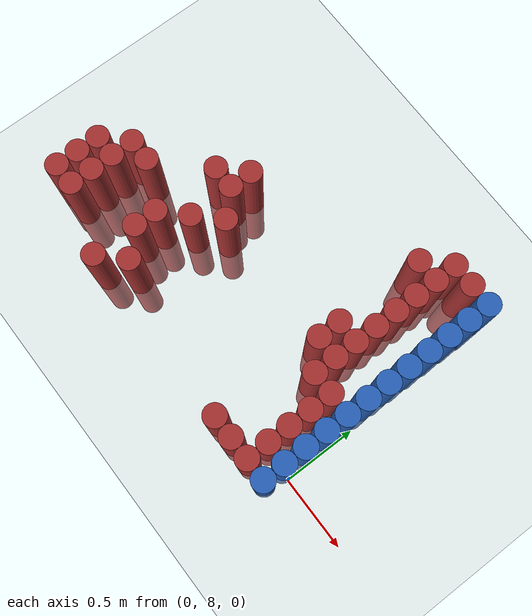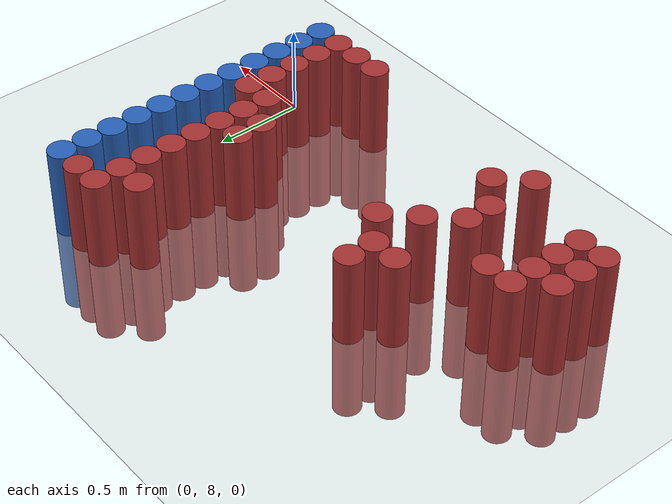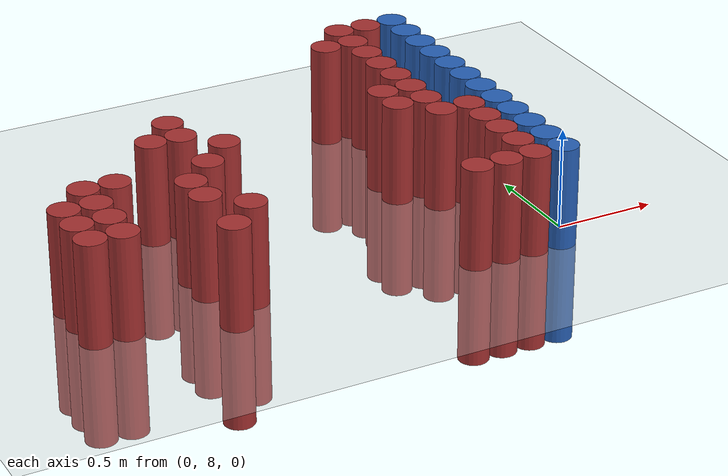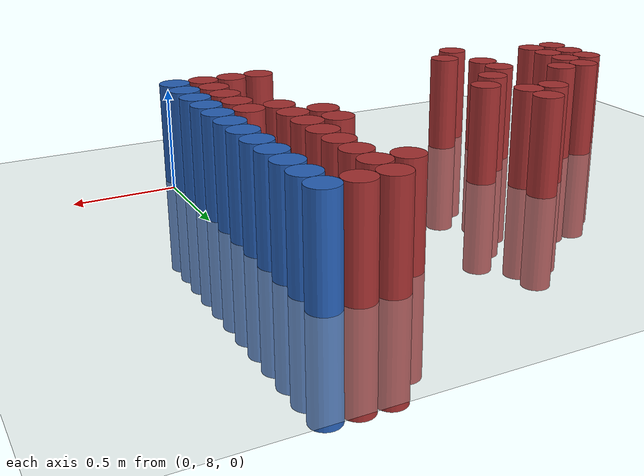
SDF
<sdf version="1.6">
 <world name="default">
  <model name="ground_plane">
   <static>1</static>
   <link name="link">
    <collision name="collision">
     <geometry><plane><normal>0 0 1</normal><size>100 100</size></plane></geometry>
     <surface><friction><ode><mu>100</mu><mu2>50</mu2></ode></friction></surface>
    </collision>
    <visual name="visual">
     <cast_shadows>0</cast_shadows>
     <geometry><plane><normal>0 0 1</normal><size>100 100</size></plane></geometry>
     <material>
      <script><uri>file://media/materials/scripts/gazebo.material</uri><name>Gazebo/Grey</name></script>
     </material>
    </visual>
   </link>
  </model>
  <model name="unit_cylinder_216">
   <static>1</static>
   <pose>-2.325000 8.025000 0.000000 0.000000 0.000000 0.000000</pose>
   <link name="link">
    <inertial>
     <mass>1</mass>
     <inertia><ixx>0.145833</ixx><ixy>0</ixy><ixz>0</ixz><iyy>0.145833</iyy><iyz>0</iyz><izz>0.125</izz></inertia>
    </inertial>
    <collision name="collision">
     <geometry><cylinder><radius>0.075000</radius><length>1</length></cylinder></geometry>
    </collision>
    <visual name="visual">
     <geometry><cylinder><radius>0.075000</radius><length>1</length></cylinder></geometry>
     <material>
      <ambient>0.648000 0.192000 0.192000 1</ambient>
      <diffuse>0.648000 0.192000 0.192000 1</diffuse>
     </material>
     <material>
      <script><name>Gazebo/Grey</name><uri>file://media/materials/scripts/gazebo.material</uri></script>
     </material>
    </visual>
   </link>
  </model>
  <model name="unit_cylinder_217">
   <static>1</static>
   <pose>-2.325000 8.175000 0.000000 0.000000 0.000000 0.000000</pose>
   <link name="link">
    <inertial>
     <mass>1</mass>
     <inertia><ixx>0.145833</ixx><ixy>0</ixy><ixz>0</ixz><iyy>0.145833</iyy><iyz>0</iyz><izz>0.125</izz></inertia>
    </inertial>
    <collision name="collision">
     <geometry><cylinder><radius>0.075000</radius><length>1</length></cylinder></geometry>
    </collision>
    <visual name="visual">
     <geometry><cylinder><radius>0.075000</radius><length>1</length></cylinder></geometry>
     <material>
      <ambient>0.648000 0.192000 0.192000 1</ambient>
      <diffuse>0.648000 0.192000 0.192000 1</diffuse>
     </material>
     <material>
      <script><name>Gazebo/Grey</name><uri>file://media/materials/scripts/gazebo.material</uri></script>
     </material>
    </visual>
   </link>
  </model>
  <model name="unit_cylinder_218">
   <static>1</static>
   <pose>-2.325000 8.325000 0.000000 0.000000 0.000000 0.000000</pose>
   <link name="link">
    <inertial>
     <mass>1</mass>
     <inertia><ixx>0.145833</ixx><ixy>0</ixy><ixz>0</ixz><iyy>0.145833</iyy><iyz>0</iyz><izz>0.125</izz></inertia>
    </inertial>
    <collision name="collision">
     <geometry><cylinder><radius>0.075000</radius><length>1</length></cylinder></geometry>
    </collision>
    <visual name="visual">
     <geometry><cylinder><radius>0.075000</radius><length>1</length></cylinder></geometry>
     <material>
      <ambient>0.648000 0.192000 0.192000 1</ambient>
      <diffuse>0.648000 0.192000 0.192000 1</diffuse>
     </material>
     <material>
      <script><name>Gazebo/Grey</name><uri>file://media/materials/scripts/gazebo.material</uri></script>
     </material>
    </visual>
   </link>
  </model>
  <model name="unit_cylinder_226">
   <static>1</static>
   <pose>-2.175000 8.025000 0.000000 0.000000 0.000000 0.000000</pose>
   <link name="link">
    <inertial>
     <mass>1</mass>
     <inertia><ixx>0.145833</ixx><ixy>0</ixy><ixz>0</ixz><iyy>0.145833</iyy><iyz>0</iyz><izz>0.125</izz></inertia>
    </inertial>
    <collision name="collision">
     <geometry><cylinder><radius>0.075000</radius><length>1</length></cylinder></geometry>
    </collision>
    <visual name="visual">
     <geometry><cylinder><radius>0.075000</radius><length>1</length></cylinder></geometry>
     <material>
      <ambient>0.648000 0.192000 0.192000 1</ambient>
      <diffuse>0.648000 0.192000 0.192000 1</diffuse>
     </material>
     <material>
      <script><name>Gazebo/Grey</name><uri>file://media/materials/scripts/gazebo.material</uri></script>
     </material>
    </visual>
   </link>
  </model>
  <model name="unit_cylinder_227">
   <static>1</static>
   <pose>-2.175000 8.175000 0.000000 0.000000 0.000000 0.000000</pose>
   <link name="link">
    <inertial>
     <mass>1</mass>
     <inertia><ixx>0.145833</ixx><ixy>0</ixy><ixz>0</ixz><iyy>0.145833</iyy><iyz>0</iyz><izz>0.125</izz></inertia>
    </inertial>
    <collision name="collision">
     <geometry><cylinder><radius>0.075000</radius><length>1</length></cylinder></geometry>
    </collision>
    <visual name="visual">
     <geometry><cylinder><radius>0.075000</radius><length>1</length></cylinder></geometry>
     <material>
      <ambient>0.648000 0.192000 0.192000 1</ambient>
      <diffuse>0.648000 0.192000 0.192000 1</diffuse>
     </material>
     <material>
      <script><name>Gazebo/Grey</name><uri>file://media/materials/scripts/gazebo.material</uri></script>
     </material>
    </visual>
   </link>
  </model>
  <model name="unit_cylinder_228">
   <static>1</static>
   <pose>-2.175000 8.325000 0.000000 0.000000 0.000000 0.000000</pose>
   <link name="link">
    <inertial>
     <mass>1</mass>
     <inertia><ixx>0.145833</ixx><ixy>0</ixy><ixz>0</ixz><iyy>0.145833</iyy><iyz>0</iyz><izz>0.125</izz></inertia>
    </inertial>
    <collision name="collision">
     <geometry><cylinder><radius>0.075000</radius><length>1</length></cylinder></geometry>
    </collision>
    <visual name="visual">
     <geometry><cylinder><radius>0.075000</radius><length>1</length></cylinder></geometry>
     <material>
      <ambient>0.648000 0.192000 0.192000 1</ambient>
      <diffuse>0.648000 0.192000 0.192000 1</diffuse>
     </material>
     <material>
      <script><name>Gazebo/Grey</name><uri>file://media/materials/scripts/gazebo.material</uri></script>
     </material>
    </visual>
   </link>
  </model>
  <model name="unit_cylinder_229">
   <static>1</static>
   <pose>-2.175000 8.475000 0.000000 0.000000 0.000000 0.000000</pose>
   <link name="link">
    <inertial>
     <mass>1</mass>
     <inertia><ixx>0.145833</ixx><ixy>0</ixy><ixz>0</ixz><iyy>0.145833</iyy><iyz>0</iyz><izz>0.125</izz></inertia>
    </inertial>
    <collision name="collision">
     <geometry><cylinder><radius>0.075000</radius><length>1</length></cylinder></geometry>
    </collision>
    <visual name="visual">
     <geometry><cylinder><radius>0.075000</radius><length>1</length></cylinder></geometry>
     <material>
      <ambient>0.648000 0.192000 0.192000 1</ambient>
      <diffuse>0.648000 0.192000 0.192000 1</diffuse>
     </material>
     <material>
      <script><name>Gazebo/Grey</name><uri>file://media/materials/scripts/gazebo.material</uri></script>
     </material>
    </visual>
   </link>
  </model>
  <model name="unit_cylinder_235">
   <static>1</static>
   <pose>-2.025000 8.475000 0.000000 0.000000 0.000000 0.000000</pose>
   <link name="link">
    <inertial>
     <mass>1</mass>
     <inertia><ixx>0.145833</ixx><ixy>0</ixy><ixz>0</ixz><iyy>0.145833</iyy><iyz>0</iyz><izz>0.125</izz></inertia>
    </inertial>
    <collision name="collision">
     <geometry><cylinder><radius>0.075000</radius><length>1</length></cylinder></geometry>
    </collision>
    <visual name="visual">
     <geometry><cylinder><radius>0.075000</radius><length>1</length></cylinder></geometry>
     <material>
      <ambient>0.648000 0.192000 0.192000 1</ambient>
      <diffuse>0.648000 0.192000 0.192000 1</diffuse>
     </material>
     <material>
      <script><name>Gazebo/Grey</name><uri>file://media/materials/scripts/gazebo.material</uri></script>
     </material>
    </visual>
   </link>
  </model>
  <model name="unit_cylinder_247">
   <static>1</static>
   <pose>-1.725000 7.875000 0.000000 0.000000 0.000000 0.000000</pose>
   <link name="link">
    <inertial>
     <mass>1</mass>
     <inertia><ixx>0.145833</ixx><ixy>0</ixy><ixz>0</ixz><iyy>0.145833</iyy><iyz>0</iyz><izz>0.125</izz></inertia>
    </inertial>
    <collision name="collision">
     <geometry><cylinder><radius>0.075000</radius><length>1</length></cylinder></geometry>
    </collision>
    <visual name="visual">
     <geometry><cylinder><radius>0.075000</radius><length>1</length></cylinder></geometry>
     <material>
      <ambient>0.648000 0.192000 0.192000 1</ambient>
      <diffuse>0.648000 0.192000 0.192000 1</diffuse>
     </material>
     <material>
      <script><name>Gazebo/Grey</name><uri>file://media/materials/scripts/gazebo.material</uri></script>
     </material>
    </visual>
   </link>
  </model>
  <model name="unit_cylinder_248">
   <static>1</static>
   <pose>-1.725000 8.175000 0.000000 0.000000 0.000000 0.000000</pose>
   <link name="link">
    <inertial>
     <mass>1</mass>
     <inertia><ixx>0.145833</ixx><ixy>0</ixy><ixz>0</ixz><iyy>0.145833</iyy><iyz>0</iyz><izz>0.125</izz></inertia>
    </inertial>
    <collision name="collision">
     <geometry><cylinder><radius>0.075000</radius><length>1</length></cylinder></geometry>
    </collision>
    <visual name="visual">
     <geometry><cylinder><radius>0.075000</radius><length>1</length></cylinder></geometry>
     <material>
      <ambient>0.648000 0.192000 0.192000 1</ambient>
      <diffuse>0.648000 0.192000 0.192000 1</diffuse>
     </material>
     <material>
      <script><name>Gazebo/Grey</name><uri>file://media/materials/scripts/gazebo.material</uri></script>
     </material>
    </visual>
   </link>
  </model>
  <model name="unit_cylinder_249">
   <static>1</static>
   <pose>-1.725000 8.325000 0.000000 0.000000 0.000000 0.000000</pose>
   <link name="link">
    <inertial>
     <mass>1</mass>
     <inertia><ixx>0.145833</ixx><ixy>0</ixy><ixz>0</ixz><iyy>0.145833</iyy><iyz>0</iyz><izz>0.125</izz></inertia>
    </inertial>
    <collision name="collision">
     <geometry><cylinder><radius>0.075000</radius><length>1</length></cylinder></geometry>
    </collision>
    <visual name="visual">
     <geometry><cylinder><radius>0.075000</radius><length>1</length></cylinder></geometry>
     <material>
      <ambient>0.648000 0.192000 0.192000 1</ambient>
      <diffuse>0.648000 0.192000 0.192000 1</diffuse>
     </material>
     <material>
      <script><name>Gazebo/Grey</name><uri>file://media/materials/scripts/gazebo.material</uri></script>
     </material>
    </visual>
   </link>
  </model>
  <model name="unit_cylinder_250">
   <static>1</static>
   <pose>-1.725000 8.775000 0.000000 0.000000 0.000000 0.000000</pose>
   <link name="link">
    <inertial>
     <mass>1</mass>
     <inertia><ixx>0.145833</ixx><ixy>0</ixy><ixz>0</ixz><iyy>0.145833</iyy><iyz>0</iyz><izz>0.125</izz></inertia>
    </inertial>
    <collision name="collision">
     <geometry><cylinder><radius>0.075000</radius><length>1</length></cylinder></geometry>
    </collision>
    <visual name="visual">
     <geometry><cylinder><radius>0.075000</radius><length>1</length></cylinder></geometry>
     <material>
      <ambient>0.648000 0.192000 0.192000 1</ambient>
      <diffuse>0.648000 0.192000 0.192000 1</diffuse>
     </material>
     <material>
      <script><name>Gazebo/Grey</name><uri>file://media/materials/scripts/gazebo.material</uri></script>
     </material>
    </visual>
   </link>
  </model>
  <model name="unit_cylinder_256">
   <static>1</static>
   <pose>-1.575000 8.025000 0.000000 0.000000 0.000000 0.000000</pose>
   <link name="link">
    <inertial>
     <mass>1</mass>
     <inertia><ixx>0.145833</ixx><ixy>0</ixy><ixz>0</ixz><iyy>0.145833</iyy><iyz>0</iyz><izz>0.125</izz></inertia>
    </inertial>
    <collision name="collision">
     <geometry><cylinder><radius>0.075000</radius><length>1</length></cylinder></geometry>
    </collision>
    <visual name="visual">
     <geometry><cylinder><radius>0.075000</radius><length>1</length></cylinder></geometry>
     <material>
      <ambient>0.648000 0.192000 0.192000 1</ambient>
      <diffuse>0.648000 0.192000 0.192000 1</diffuse>
     </material>
     <material>
      <script><name>Gazebo/Grey</name><uri>file://media/materials/scripts/gazebo.material</uri></script>
     </material>
    </visual>
   </link>
  </model>
  <model name="unit_cylinder_257">
   <static>1</static>
   <pose>-1.575000 8.475000 0.000000 0.000000 0.000000 0.000000</pose>
   <link name="link">
    <inertial>
     <mass>1</mass>
     <inertia><ixx>0.145833</ixx><ixy>0</ixy><ixz>0</ixz><iyy>0.145833</iyy><iyz>0</iyz><izz>0.125</izz></inertia>
    </inertial>
    <collision name="collision">
     <geometry><cylinder><radius>0.075000</radius><length>1</length></cylinder></geometry>
    </collision>
    <visual name="visual">
     <geometry><cylinder><radius>0.075000</radius><length>1</length></cylinder></geometry>
     <material>
      <ambient>0.648000 0.192000 0.192000 1</ambient>
      <diffuse>0.648000 0.192000 0.192000 1</diffuse>
     </material>
     <material>
      <script><name>Gazebo/Grey</name><uri>file://media/materials/scripts/gazebo.material</uri></script>
     </material>
    </visual>
   </link>
  </model>
  <model name="unit_cylinder_258">
   <static>1</static>
   <pose>-1.575000 8.775000 0.000000 0.000000 0.000000 0.000000</pose>
   <link name="link">
    <inertial>
     <mass>1</mass>
     <inertia><ixx>0.145833</ixx><ixy>0</ixy><ixz>0</ixz><iyy>0.145833</iyy><iyz>0</iyz><izz>0.125</izz></inertia>
    </inertial>
    <collision name="collision">
     <geometry><cylinder><radius>0.075000</radius><length>1</length></cylinder></geometry>
    </collision>
    <visual name="visual">
     <geometry><cylinder><radius>0.075000</radius><length>1</length></cylinder></geometry>
     <material>
      <ambient>0.648000 0.192000 0.192000 1</ambient>
      <diffuse>0.648000 0.192000 0.192000 1</diffuse>
     </material>
     <material>
      <script><name>Gazebo/Grey</name><uri>file://media/materials/scripts/gazebo.material</uri></script>
     </material>
    </visual>
   </link>
  </model>
  <model name="unit_cylinder_259">
   <static>1</static>
   <pose>-1.575000 8.925000 0.000000 0.000000 0.000000 0.000000</pose>
   <link name="link">
    <inertial>
     <mass>1</mass>
     <inertia><ixx>0.145833</ixx><ixy>0</ixy><ixz>0</ixz><iyy>0.145833</iyy><iyz>0</iyz><izz>0.125</izz></inertia>
    </inertial>
    <collision name="collision">
     <geometry><cylinder><radius>0.075000</radius><length>1</length></cylinder></geometry>
    </collision>
    <visual name="visual">
     <geometry><cylinder><radius>0.075000</radius><length>1</length></cylinder></geometry>
     <material>
      <ambient>0.648000 0.192000 0.192000 1</ambient>
      <diffuse>0.648000 0.192000 0.192000 1</diffuse>
     </material>
     <material>
      <script><name>Gazebo/Grey</name><uri>file://media/materials/scripts/gazebo.material</uri></script>
     </material>
    </visual>
   </link>
  </model>
  <model name="unit_cylinder_260">
   <static>1</static>
   <pose>-1.425000 8.625000 0.000000 0.000000 0.000000 0.000000</pose>
   <link name="link">
    <inertial>
     <mass>1</mass>
     <inertia><ixx>0.145833</ixx><ixy>0</ixy><ixz>0</ixz><iyy>0.145833</iyy><iyz>0</iyz><izz>0.125</izz></inertia>
    </inertial>
    <collision name="collision">
     <geometry><cylinder><radius>0.075000</radius><length>1</length></cylinder></geometry>
    </collision>
    <visual name="visual">
     <geometry><cylinder><radius>0.075000</radius><length>1</length></cylinder></geometry>
     <material>
      <ambient>0.648000 0.192000 0.192000 1</ambient>
      <diffuse>0.648000 0.192000 0.192000 1</diffuse>
     </material>
     <material>
      <script><name>Gazebo/Grey</name><uri>file://media/materials/scripts/gazebo.material</uri></script>
     </material>
    </visual>
   </link>
  </model>
  <model name="unit_cylinder_272">
   <static>1</static>
   <pose>-0.525000 7.875000 0.000000 0.000000 0.000000 0.000000</pose>
   <link name="link">
    <inertial>
     <mass>1</mass>
     <inertia><ixx>0.145833</ixx><ixy>0</ixy><ixz>0</ixz><iyy>0.145833</iyy><iyz>0</iyz><izz>0.125</izz></inertia>
    </inertial>
    <collision name="collision">
     <geometry><cylinder><radius>0.075000</radius><length>1</length></cylinder></geometry>
    </collision>
    <visual name="visual">
     <geometry><cylinder><radius>0.075000</radius><length>1</length></cylinder></geometry>
     <material>
      <ambient>0.648000 0.192000 0.192000 1</ambient>
      <diffuse>0.648000 0.192000 0.192000 1</diffuse>
     </material>
     <material>
      <script><name>Gazebo/Grey</name><uri>file://media/materials/scripts/gazebo.material</uri></script>
     </material>
    </visual>
   </link>
  </model>
  <model name="unit_cylinder_273">
   <static>1</static>
   <pose>-0.525000 8.625000 0.000000 0.000000 0.000000 0.000000</pose>
   <link name="link">
    <inertial>
     <mass>1</mass>
     <inertia><ixx>0.145833</ixx><ixy>0</ixy><ixz>0</ixz><iyy>0.145833</iyy><iyz>0</iyz><izz>0.125</izz></inertia>
    </inertial>
    <collision name="collision">
     <geometry><cylinder><radius>0.075000</radius><length>1</length></cylinder></geometry>
    </collision>
    <visual name="visual">
     <geometry><cylinder><radius>0.075000</radius><length>1</length></cylinder></geometry>
     <material>
      <ambient>0.648000 0.192000 0.192000 1</ambient>
      <diffuse>0.648000 0.192000 0.192000 1</diffuse>
     </material>
     <material>
      <script><name>Gazebo/Grey</name><uri>file://media/materials/scripts/gazebo.material</uri></script>
     </material>
    </visual>
   </link>
  </model>
  <model name="unit_cylinder_274">
   <static>1</static>
   <pose>-0.525000 8.775000 0.000000 0.000000 0.000000 0.000000</pose>
   <link name="link">
    <inertial>
     <mass>1</mass>
     <inertia><ixx>0.145833</ixx><ixy>0</ixy><ixz>0</ixz><iyy>0.145833</iyy><iyz>0</iyz><izz>0.125</izz></inertia>
    </inertial>
    <collision name="collision">
     <geometry><cylinder><radius>0.075000</radius><length>1</length></cylinder></geometry>
    </collision>
    <visual name="visual">
     <geometry><cylinder><radius>0.075000</radius><length>1</length></cylinder></geometry>
     <material>
      <ambient>0.648000 0.192000 0.192000 1</ambient>
      <diffuse>0.648000 0.192000 0.192000 1</diffuse>
     </material>
     <material>
      <script><name>Gazebo/Grey</name><uri>file://media/materials/scripts/gazebo.material</uri></script>
     </material>
    </visual>
   </link>
  </model>
  <model name="unit_cylinder_275">
   <static>1</static>
   <pose>-0.525000 9.375000 0.000000 0.000000 0.000000 0.000000</pose>
   <link name="link">
    <inertial>
     <mass>1</mass>
     <inertia><ixx>0.145833</ixx><ixy>0</ixy><ixz>0</ixz><iyy>0.145833</iyy><iyz>0</iyz><izz>0.125</izz></inertia>
    </inertial>
    <collision name="collision">
     <geometry><cylinder><radius>0.075000</radius><length>1</length></cylinder></geometry>
    </collision>
    <visual name="visual">
     <geometry><cylinder><radius>0.075000</radius><length>1</length></cylinder></geometry>
     <material>
      <ambient>0.648000 0.192000 0.192000 1</ambient>
      <diffuse>0.648000 0.192000 0.192000 1</diffuse>
     </material>
     <material>
      <script><name>Gazebo/Grey</name><uri>file://media/materials/scripts/gazebo.material</uri></script>
     </material>
    </visual>
   </link>
  </model>
  <model name="unit_cylinder_279">
   <static>1</static>
   <pose>-0.375000 7.875000 0.000000 0.000000 0.000000 0.000000</pose>
   <link name="link">
    <inertial>
     <mass>1</mass>
     <inertia><ixx>0.145833</ixx><ixy>0</ixy><ixz>0</ixz><iyy>0.145833</iyy><iyz>0</iyz><izz>0.125</izz></inertia>
    </inertial>
    <collision name="collision">
     <geometry><cylinder><radius>0.075000</radius><length>1</length></cylinder></geometry>
    </collision>
    <visual name="visual">
     <geometry><cylinder><radius>0.075000</radius><length>1</length></cylinder></geometry>
     <material>
      <ambient>0.648000 0.192000 0.192000 1</ambient>
      <diffuse>0.648000 0.192000 0.192000 1</diffuse>
     </material>
     <material>
      <script><name>Gazebo/Grey</name><uri>file://media/materials/scripts/gazebo.material</uri></script>
     </material>
    </visual>
   </link>
  </model>
  <model name="unit_cylinder_280">
   <static>1</static>
   <pose>-0.375000 8.475000 0.000000 0.000000 0.000000 0.000000</pose>
   <link name="link">
    <inertial>
     <mass>1</mass>
     <inertia><ixx>0.145833</ixx><ixy>0</ixy><ixz>0</ixz><iyy>0.145833</iyy><iyz>0</iyz><izz>0.125</izz></inertia>
    </inertial>
    <collision name="collision">
     <geometry><cylinder><radius>0.075000</radius><length>1</length></cylinder></geometry>
    </collision>
    <visual name="visual">
     <geometry><cylinder><radius>0.075000</radius><length>1</length></cylinder></geometry>
     <material>
      <ambient>0.648000 0.192000 0.192000 1</ambient>
      <diffuse>0.648000 0.192000 0.192000 1</diffuse>
     </material>
     <material>
      <script><name>Gazebo/Grey</name><uri>file://media/materials/scripts/gazebo.material</uri></script>
     </material>
    </visual>
   </link>
  </model>
  <model name="unit_cylinder_281">
   <static>1</static>
   <pose>-0.375000 8.625000 0.000000 0.000000 0.000000 0.000000</pose>
   <link name="link">
    <inertial>
     <mass>1</mass>
     <inertia><ixx>0.145833</ixx><ixy>0</ixy><ixz>0</ixz><iyy>0.145833</iyy><iyz>0</iyz><izz>0.125</izz></inertia>
    </inertial>
    <collision name="collision">
     <geometry><cylinder><radius>0.075000</radius><length>1</length></cylinder></geometry>
    </collision>
    <visual name="visual">
     <geometry><cylinder><radius>0.075000</radius><length>1</length></cylinder></geometry>
     <material>
      <ambient>0.648000 0.192000 0.192000 1</ambient>
      <diffuse>0.648000 0.192000 0.192000 1</diffuse>
     </material>
     <material>
      <script><name>Gazebo/Grey</name><uri>file://media/materials/scripts/gazebo.material</uri></script>
     </material>
    </visual>
   </link>
  </model>
  <model name="unit_cylinder_282">
   <static>1</static>
   <pose>-0.375000 8.775000 0.000000 0.000000 0.000000 0.000000</pose>
   <link name="link">
    <inertial>
     <mass>1</mass>
     <inertia><ixx>0.145833</ixx><ixy>0</ixy><ixz>0</ixz><iyy>0.145833</iyy><iyz>0</iyz><izz>0.125</izz></inertia>
    </inertial>
    <collision name="collision">
     <geometry><cylinder><radius>0.075000</radius><length>1</length></cylinder></geometry>
    </collision>
    <visual name="visual">
     <geometry><cylinder><radius>0.075000</radius><length>1</length></cylinder></geometry>
     <material>
      <ambient>0.648000 0.192000 0.192000 1</ambient>
      <diffuse>0.648000 0.192000 0.192000 1</diffuse>
     </material>
     <material>
      <script><name>Gazebo/Grey</name><uri>file://media/materials/scripts/gazebo.material</uri></script>
     </material>
    </visual>
   </link>
  </model>
  <model name="unit_cylinder_283">
   <static>1</static>
   <pose>-0.375000 8.925000 0.000000 0.000000 0.000000 0.000000</pose>
   <link name="link">
    <inertial>
     <mass>1</mass>
     <inertia><ixx>0.145833</ixx><ixy>0</ixy><ixz>0</ixz><iyy>0.145833</iyy><iyz>0</iyz><izz>0.125</izz></inertia>
    </inertial>
    <collision name="collision">
     <geometry><cylinder><radius>0.075000</radius><length>1</length></cylinder></geometry>
    </collision>
    <visual name="visual">
     <geometry><cylinder><radius>0.075000</radius><length>1</length></cylinder></geometry>
     <material>
      <ambient>0.648000 0.192000 0.192000 1</ambient>
      <diffuse>0.648000 0.192000 0.192000 1</diffuse>
     </material>
     <material>
      <script><name>Gazebo/Grey</name><uri>file://media/materials/scripts/gazebo.material</uri></script>
     </material>
    </visual>
   </link>
  </model>
  <model name="unit_cylinder_284">
   <static>1</static>
   <pose>-0.375000 9.075000 0.000000 0.000000 0.000000 0.000000</pose>
   <link name="link">
    <inertial>
     <mass>1</mass>
     <inertia><ixx>0.145833</ixx><ixy>0</ixy><ixz>0</ixz><iyy>0.145833</iyy><iyz>0</iyz><izz>0.125</izz></inertia>
    </inertial>
    <collision name="collision">
     <geometry><cylinder><radius>0.075000</radius><length>1</length></cylinder></geometry>
    </collision>
    <visual name="visual">
     <geometry><cylinder><radius>0.075000</radius><length>1</length></cylinder></geometry>
     <material>
      <ambient>0.648000 0.192000 0.192000 1</ambient>
      <diffuse>0.648000 0.192000 0.192000 1</diffuse>
     </material>
     <material>
      <script><name>Gazebo/Grey</name><uri>file://media/materials/scripts/gazebo.material</uri></script>
     </material>
    </visual>
   </link>
  </model>
  <model name="unit_cylinder_285">
   <static>1</static>
   <pose>-0.375000 9.225000 0.000000 0.000000 0.000000 0.000000</pose>
   <link name="link">
    <inertial>
     <mass>1</mass>
     <inertia><ixx>0.145833</ixx><ixy>0</ixy><ixz>0</ixz><iyy>0.145833</iyy><iyz>0</iyz><izz>0.125</izz></inertia>
    </inertial>
    <collision name="collision">
     <geometry><cylinder><radius>0.075000</radius><length>1</length></cylinder></geometry>
    </collision>
    <visual name="visual">
     <geometry><cylinder><radius>0.075000</radius><length>1</length></cylinder></geometry>
     <material>
      <ambient>0.648000 0.192000 0.192000 1</ambient>
      <diffuse>0.648000 0.192000 0.192000 1</diffuse>
     </material>
     <material>
      <script><name>Gazebo/Grey</name><uri>file://media/materials/scripts/gazebo.material</uri></script>
     </material>
    </visual>
   </link>
  </model>
  <model name="unit_cylinder_286">
   <static>1</static>
   <pose>-0.375000 9.375000 0.000000 0.000000 0.000000 0.000000</pose>
   <link name="link">
    <inertial>
     <mass>1</mass>
     <inertia><ixx>0.145833</ixx><ixy>0</ixy><ixz>0</ixz><iyy>0.145833</iyy><iyz>0</iyz><izz>0.125</izz></inertia>
    </inertial>
    <collision name="collision">
     <geometry><cylinder><radius>0.075000</radius><length>1</length></cylinder></geometry>
    </collision>
    <visual name="visual">
     <geometry><cylinder><radius>0.075000</radius><length>1</length></cylinder></geometry>
     <material>
      <ambient>0.648000 0.192000 0.192000 1</ambient>
      <diffuse>0.648000 0.192000 0.192000 1</diffuse>
     </material>
     <material>
      <script><name>Gazebo/Grey</name><uri>file://media/materials/scripts/gazebo.material</uri></script>
     </material>
    </visual>
   </link>
  </model>
  <model name="unit_cylinder_287">
   <static>1</static>
   <pose>-0.375000 9.525000 0.000000 0.000000 0.000000 0.000000</pose>
   <link name="link">
    <inertial>
     <mass>1</mass>
     <inertia><ixx>0.145833</ixx><ixy>0</ixy><ixz>0</ixz><iyy>0.145833</iyy><iyz>0</iyz><izz>0.125</izz></inertia>
    </inertial>
    <collision name="collision">
     <geometry><cylinder><radius>0.075000</radius><length>1</length></cylinder></geometry>
    </collision>
    <visual name="visual">
     <geometry><cylinder><radius>0.075000</radius><length>1</length></cylinder></geometry>
     <material>
      <ambient>0.648000 0.192000 0.192000 1</ambient>
      <diffuse>0.648000 0.192000 0.192000 1</diffuse>
     </material>
     <material>
      <script><name>Gazebo/Grey</name><uri>file://media/materials/scripts/gazebo.material</uri></script>
     </material>
    </visual>
   </link>
  </model>
  <model name="unit_cylinder_298">
   <static>1</static>
   <pose>-0.225000 7.875000 0.000000 0.000000 0.000000 0.000000</pose>
   <link name="link">
    <inertial>
     <mass>1</mass>
     <inertia><ixx>0.145833</ixx><ixy>0</ixy><ixz>0</ixz><iyy>0.145833</iyy><iyz>0</iyz><izz>0.125</izz></inertia>
    </inertial>
    <collision name="collision">
     <geometry><cylinder><radius>0.075000</radius><length>1</length></cylinder></geometry>
    </collision>
    <visual name="visual">
     <geometry><cylinder><radius>0.075000</radius><length>1</length></cylinder></geometry>
     <material>
      <ambient>0.648000 0.192000 0.192000 1</ambient>
      <diffuse>0.648000 0.192000 0.192000 1</diffuse>
     </material>
     <material>
      <script><name>Gazebo/Grey</name><uri>file://media/materials/scripts/gazebo.material</uri></script>
     </material>
    </visual>
   </link>
  </model>
  <model name="unit_cylinder_299">
   <static>1</static>
   <pose>-0.225000 8.025000 0.000000 0.000000 0.000000 0.000000</pose>
   <link name="link">
    <inertial>
     <mass>1</mass>
     <inertia><ixx>0.145833</ixx><ixy>0</ixy><ixz>0</ixz><iyy>0.145833</iyy><iyz>0</iyz><izz>0.125</izz></inertia>
    </inertial>
    <collision name="collision">
     <geometry><cylinder><radius>0.075000</radius><length>1</length></cylinder></geometry>
    </collision>
    <visual name="visual">
     <geometry><cylinder><radius>0.075000</radius><length>1</length></cylinder></geometry>
     <material>
      <ambient>0.648000 0.192000 0.192000 1</ambient>
      <diffuse>0.648000 0.192000 0.192000 1</diffuse>
     </material>
     <material>
      <script><name>Gazebo/Grey</name><uri>file://media/materials/scripts/gazebo.material</uri></script>
     </material>
    </visual>
   </link>
  </model>
  <model name="unit_cylinder_300">
   <static>1</static>
   <pose>-0.225000 8.175000 0.000000 0.000000 0.000000 0.000000</pose>
   <link name="link">
    <inertial>
     <mass>1</mass>
     <inertia><ixx>0.145833</ixx><ixy>0</ixy><ixz>0</ixz><iyy>0.145833</iyy><iyz>0</iyz><izz>0.125</izz></inertia>
    </inertial>
    <collision name="collision">
     <geometry><cylinder><radius>0.075000</radius><length>1</length></cylinder></geometry>
    </collision>
    <visual name="visual">
     <geometry><cylinder><radius>0.075000</radius><length>1</length></cylinder></geometry>
     <material>
      <ambient>0.648000 0.192000 0.192000 1</ambient>
      <diffuse>0.648000 0.192000 0.192000 1</diffuse>
     </material>
     <material>
      <script><name>Gazebo/Grey</name><uri>file://media/materials/scripts/gazebo.material</uri></script>
     </material>
    </visual>
   </link>
  </model>
  <model name="unit_cylinder_301">
   <static>1</static>
   <pose>-0.225000 8.325000 0.000000 0.000000 0.000000 0.000000</pose>
   <link name="link">
    <inertial>
     <mass>1</mass>
     <inertia><ixx>0.145833</ixx><ixy>0</ixy><ixz>0</ixz><iyy>0.145833</iyy><iyz>0</iyz><izz>0.125</izz></inertia>
    </inertial>
    <collision name="collision">
     <geometry><cylinder><radius>0.075000</radius><length>1</length></cylinder></geometry>
    </collision>
    <visual name="visual">
     <geometry><cylinder><radius>0.075000</radius><length>1</length></cylinder></geometry>
     <material>
      <ambient>0.648000 0.192000 0.192000 1</ambient>
      <diffuse>0.648000 0.192000 0.192000 1</diffuse>
     </material>
     <material>
      <script><name>Gazebo/Grey</name><uri>file://media/materials/scripts/gazebo.material</uri></script>
     </material>
    </visual>
   </link>
  </model>
  <model name="unit_cylinder_302">
   <static>1</static>
   <pose>-0.225000 8.475000 0.000000 0.000000 0.000000 0.000000</pose>
   <link name="link">
    <inertial>
     <mass>1</mass>
     <inertia><ixx>0.145833</ixx><ixy>0</ixy><ixz>0</ixz><iyy>0.145833</iyy><iyz>0</iyz><izz>0.125</izz></inertia>
    </inertial>
    <collision name="collision">
     <geometry><cylinder><radius>0.075000</radius><length>1</length></cylinder></geometry>
    </collision>
    <visual name="visual">
     <geometry><cylinder><radius>0.075000</radius><length>1</length></cylinder></geometry>
     <material>
      <ambient>0.648000 0.192000 0.192000 1</ambient>
      <diffuse>0.648000 0.192000 0.192000 1</diffuse>
     </material>
     <material>
      <script><name>Gazebo/Grey</name><uri>file://media/materials/scripts/gazebo.material</uri></script>
     </material>
    </visual>
   </link>
  </model>
  <model name="unit_cylinder_303">
   <static>1</static>
   <pose>-0.225000 9.525000 0.000000 0.000000 0.000000 0.000000</pose>
   <link name="link">
    <inertial>
     <mass>1</mass>
     <inertia><ixx>0.145833</ixx><ixy>0</ixy><ixz>0</ixz><iyy>0.145833</iyy><iyz>0</iyz><izz>0.125</izz></inertia>
    </inertial>
    <collision name="collision">
     <geometry><cylinder><radius>0.075000</radius><length>1</length></cylinder></geometry>
    </collision>
    <visual name="visual">
     <geometry><cylinder><radius>0.075000</radius><length>1</length></cylinder></geometry>
     <material>
      <ambient>0.648000 0.192000 0.192000 1</ambient>
      <diffuse>0.648000 0.192000 0.192000 1</diffuse>
     </material>
     <material>
      <script><name>Gazebo/Grey</name><uri>file://media/materials/scripts/gazebo.material</uri></script>
     </material>
    </visual>
   </link>
  </model>
  <model name="unit_cylinder_322">
   <static>1</static>
   <pose>-0.075000 7.875000 0.000000 0.000000 0.000000 0.000000</pose>
   <link name="link">
    <inertial>
     <mass>1</mass>
     <inertia><ixx>0.145833</ixx><ixy>0</ixy><ixz>0</ixz><iyy>0.145833</iyy><iyz>0</iyz><izz>0.125</izz></inertia>
    </inertial>
    <collision name="collision">
     <geometry><cylinder><radius>0.075000</radius><length>1</length></cylinder></geometry>
    </collision>
    <visual name="visual">
     <geometry><cylinder><radius>0.075000</radius><length>1</length></cylinder></geometry>
     <material>
      <ambient>0.152000 0.379000 0.720000 1</ambient>
      <diffuse>0.152000 0.379000 0.720000 1</diffuse>
     </material>
     <material>
      <script><name>Gazebo/Grey</name><uri>file://media/materials/scripts/gazebo.material</uri></script>
     </material>
    </visual>
   </link>
  </model>
  <model name="unit_cylinder_323">
   <static>1</static>
   <pose>-0.075000 8.025000 0.000000 0.000000 0.000000 0.000000</pose>
   <link name="link">
    <inertial>
     <mass>1</mass>
     <inertia><ixx>0.145833</ixx><ixy>0</ixy><ixz>0</ixz><iyy>0.145833</iyy><iyz>0</iyz><izz>0.125</izz></inertia>
    </inertial>
    <collision name="collision">
     <geometry><cylinder><radius>0.075000</radius><length>1</length></cylinder></geometry>
    </collision>
    <visual name="visual">
     <geometry><cylinder><radius>0.075000</radius><length>1</length></cylinder></geometry>
     <material>
      <ambient>0.152000 0.379000 0.720000 1</ambient>
      <diffuse>0.152000 0.379000 0.720000 1</diffuse>
     </material>
     <material>
      <script><name>Gazebo/Grey</name><uri>file://media/materials/scripts/gazebo.material</uri></script>
     </material>
    </visual>
   </link>
  </model>
  <model name="unit_cylinder_324">
   <static>1</static>
   <pose>-0.075000 8.175000 0.000000 0.000000 0.000000 0.000000</pose>
   <link name="link">
    <inertial>
     <mass>1</mass>
     <inertia><ixx>0.145833</ixx><ixy>0</ixy><ixz>0</ixz><iyy>0.145833</iyy><iyz>0</iyz><izz>0.125</izz></inertia>
    </inertial>
    <collision name="collision">
     <geometry><cylinder><radius>0.075000</radius><length>1</length></cylinder></geometry>
    </collision>
    <visual name="visual">
     <geometry><cylinder><radius>0.075000</radius><length>1</length></cylinder></geometry>
     <material>
      <ambient>0.152000 0.379000 0.720000 1</ambient>
      <diffuse>0.152000 0.379000 0.720000 1</diffuse>
     </material>
     <material>
      <script><name>Gazebo/Grey</name><uri>file://media/materials/scripts/gazebo.material</uri></script>
     </material>
    </visual>
   </link>
  </model>
  <model name="unit_cylinder_325">
   <static>1</static>
   <pose>-0.075000 8.325000 0.000000 0.000000 0.000000 0.000000</pose>
   <link name="link">
    <inertial>
     <mass>1</mass>
     <inertia><ixx>0.145833</ixx><ixy>0</ixy><ixz>0</ixz><iyy>0.145833</iyy><iyz>0</iyz><izz>0.125</izz></inertia>
    </inertial>
    <collision name="collision">
     <geometry><cylinder><radius>0.075000</radius><length>1</length></cylinder></geometry>
    </collision>
    <visual name="visual">
     <geometry><cylinder><radius>0.075000</radius><length>1</length></cylinder></geometry>
     <material>
      <ambient>0.152000 0.379000 0.720000 1</ambient>
      <diffuse>0.152000 0.379000 0.720000 1</diffuse>
     </material>
     <material>
      <script><name>Gazebo/Grey</name><uri>file://media/materials/scripts/gazebo.material</uri></script>
     </material>
    </visual>
   </link>
  </model>
  <model name="unit_cylinder_326">
   <static>1</static>
   <pose>-0.075000 8.475000 0.000000 0.000000 0.000000 0.000000</pose>
   <link name="link">
    <inertial>
     <mass>1</mass>
     <inertia><ixx>0.145833</ixx><ixy>0</ixy><ixz>0</ixz><iyy>0.145833</iyy><iyz>0</iyz><izz>0.125</izz></inertia>
    </inertial>
    <collision name="collision">
     <geometry><cylinder><radius>0.075000</radius><length>1</length></cylinder></geometry>
    </collision>
    <visual name="visual">
     <geometry><cylinder><radius>0.075000</radius><length>1</length></cylinder></geometry>
     <material>
      <ambient>0.152000 0.379000 0.720000 1</ambient>
      <diffuse>0.152000 0.379000 0.720000 1</diffuse>
     </material>
     <material>
      <script><name>Gazebo/Grey</name><uri>file://media/materials/scripts/gazebo.material</uri></script>
     </material>
    </visual>
   </link>
  </model>
  <model name="unit_cylinder_327">
   <static>1</static>
   <pose>-0.075000 8.625000 0.000000 0.000000 0.000000 0.000000</pose>
   <link name="link">
    <inertial>
     <mass>1</mass>
     <inertia><ixx>0.145833</ixx><ixy>0</ixy><ixz>0</ixz><iyy>0.145833</iyy><iyz>0</iyz><izz>0.125</izz></inertia>
    </inertial>
    <collision name="collision">
     <geometry><cylinder><radius>0.075000</radius><length>1</length></cylinder></geometry>
    </collision>
    <visual name="visual">
     <geometry><cylinder><radius>0.075000</radius><length>1</length></cylinder></geometry>
     <material>
      <ambient>0.152000 0.379000 0.720000 1</ambient>
      <diffuse>0.152000 0.379000 0.720000 1</diffuse>
     </material>
     <material>
      <script><name>Gazebo/Grey</name><uri>file://media/materials/scripts/gazebo.material</uri></script>
     </material>
    </visual>
   </link>
  </model>
  <model name="unit_cylinder_328">
   <static>1</static>
   <pose>-0.075000 8.775000 0.000000 0.000000 0.000000 0.000000</pose>
   <link name="link">
    <inertial>
     <mass>1</mass>
     <inertia><ixx>0.145833</ixx><ixy>0</ixy><ixz>0</ixz><iyy>0.145833</iyy><iyz>0</iyz><izz>0.125</izz></inertia>
    </inertial>
    <collision name="collision">
     <geometry><cylinder><radius>0.075000</radius><length>1</length></cylinder></geometry>
    </collision>
    <visual name="visual">
     <geometry><cylinder><radius>0.075000</radius><length>1</length></cylinder></geometry>
     <material>
      <ambient>0.152000 0.379000 0.720000 1</ambient>
      <diffuse>0.152000 0.379000 0.720000 1</diffuse>
     </material>
     <material>
      <script><name>Gazebo/Grey</name><uri>file://media/materials/scripts/gazebo.material</uri></script>
     </material>
    </visual>
   </link>
  </model>
  <model name="unit_cylinder_329">
   <static>1</static>
   <pose>-0.075000 8.925000 0.000000 0.000000 0.000000 0.000000</pose>
   <link name="link">
    <inertial>
     <mass>1</mass>
     <inertia><ixx>0.145833</ixx><ixy>0</ixy><ixz>0</ixz><iyy>0.145833</iyy><iyz>0</iyz><izz>0.125</izz></inertia>
    </inertial>
    <collision name="collision">
     <geometry><cylinder><radius>0.075000</radius><length>1</length></cylinder></geometry>
    </collision>
    <visual name="visual">
     <geometry><cylinder><radius>0.075000</radius><length>1</length></cylinder></geometry>
     <material>
      <ambient>0.152000 0.379000 0.720000 1</ambient>
      <diffuse>0.152000 0.379000 0.720000 1</diffuse>
     </material>
     <material>
      <script><name>Gazebo/Grey</name><uri>file://media/materials/scripts/gazebo.material</uri></script>
     </material>
    </visual>
   </link>
  </model>
  <model name="unit_cylinder_330">
   <static>1</static>
   <pose>-0.075000 9.075000 0.000000 0.000000 0.000000 0.000000</pose>
   <link name="link">
    <inertial>
     <mass>1</mass>
     <inertia><ixx>0.145833</ixx><ixy>0</ixy><ixz>0</ixz><iyy>0.145833</iyy><iyz>0</iyz><izz>0.125</izz></inertia>
    </inertial>
    <collision name="collision">
     <geometry><cylinder><radius>0.075000</radius><length>1</length></cylinder></geometry>
    </collision>
    <visual name="visual">
     <geometry><cylinder><radius>0.075000</radius><length>1</length></cylinder></geometry>
     <material>
      <ambient>0.152000 0.379000 0.720000 1</ambient>
      <diffuse>0.152000 0.379000 0.720000 1</diffuse>
     </material>
     <material>
      <script><name>Gazebo/Grey</name><uri>file://media/materials/scripts/gazebo.material</uri></script>
     </material>
    </visual>
   </link>
  </model>
  <model name="unit_cylinder_331">
   <static>1</static>
   <pose>-0.075000 9.225000 0.000000 0.000000 0.000000 0.000000</pose>
   <link name="link">
    <inertial>
     <mass>1</mass>
     <inertia><ixx>0.145833</ixx><ixy>0</ixy><ixz>0</ixz><iyy>0.145833</iyy><iyz>0</iyz><izz>0.125</izz></inertia>
    </inertial>
    <collision name="collision">
     <geometry><cylinder><radius>0.075000</radius><length>1</length></cylinder></geometry>
    </collision>
    <visual name="visual">
     <geometry><cylinder><radius>0.075000</radius><length>1</length></cylinder></geometry>
     <material>
      <ambient>0.152000 0.379000 0.720000 1</ambient>
      <diffuse>0.152000 0.379000 0.720000 1</diffuse>
     </material>
     <material>
      <script><name>Gazebo/Grey</name><uri>file://media/materials/scripts/gazebo.material</uri></script>
     </material>
    </visual>
   </link>
  </model>
  <model name="unit_cylinder_332">
   <static>1</static>
   <pose>-0.075000 9.375000 0.000000 0.000000 0.000000 0.000000</pose>
   <link name="link">
    <inertial>
     <mass>1</mass>
     <inertia><ixx>0.145833</ixx><ixy>0</ixy><ixz>0</ixz><iyy>0.145833</iyy><iyz>0</iyz><izz>0.125</izz></inertia>
    </inertial>
    <collision name="collision">
     <geometry><cylinder><radius>0.075000</radius><length>1</length></cylinder></geometry>
    </collision>
    <visual name="visual">
     <geometry><cylinder><radius>0.075000</radius><length>1</length></cylinder></geometry>
     <material>
      <ambient>0.152000 0.379000 0.720000 1</ambient>
      <diffuse>0.152000 0.379000 0.720000 1</diffuse>
     </material>
     <material>
      <script><name>Gazebo/Grey</name><uri>file://media/materials/scripts/gazebo.material</uri></script>
     </material>
    </visual>
   </link>
  </model>
  <model name="unit_cylinder_333">
   <static>1</static>
   <pose>-0.075000 9.525000 0.000000 0.000000 0.000000 0.000000</pose>
   <link name="link">
    <inertial>
     <mass>1</mass>
     <inertia><ixx>0.145833</ixx><ixy>0</ixy><ixz>0</ixz><iyy>0.145833</iyy><iyz>0</iyz><izz>0.125</izz></inertia>
    </inertial>
    <collision name="collision">
     <geometry><cylinder><radius>0.075000</radius><length>1</length></cylinder></geometry>
    </collision>
    <visual name="visual">
     <geometry><cylinder><radius>0.075000</radius><length>1</length></cylinder></geometry>
     <material>
      <ambient>0.152000 0.379000 0.720000 1</ambient>
      <diffuse>0.152000 0.379000 0.720000 1</diffuse>
     </material>
     <material>
      <script><name>Gazebo/Grey</name><uri>file://media/materials/scripts/gazebo.material</uri></script>
     </material>
    </visual>
   </link>
  </model>
 </world>
</sdf>
